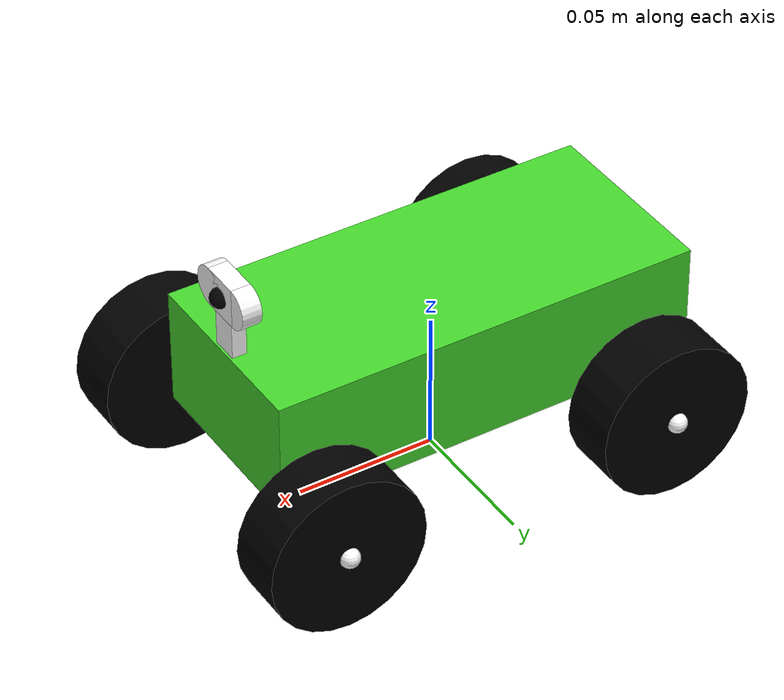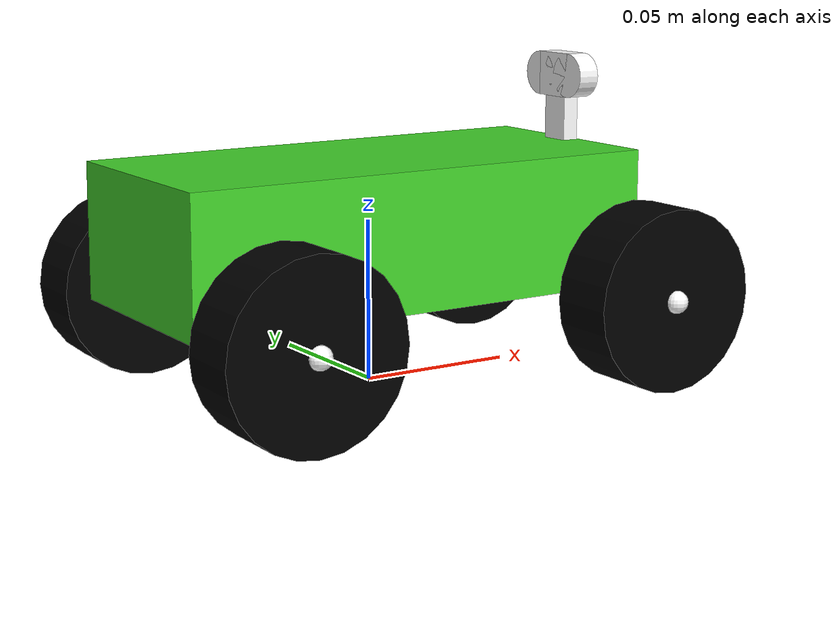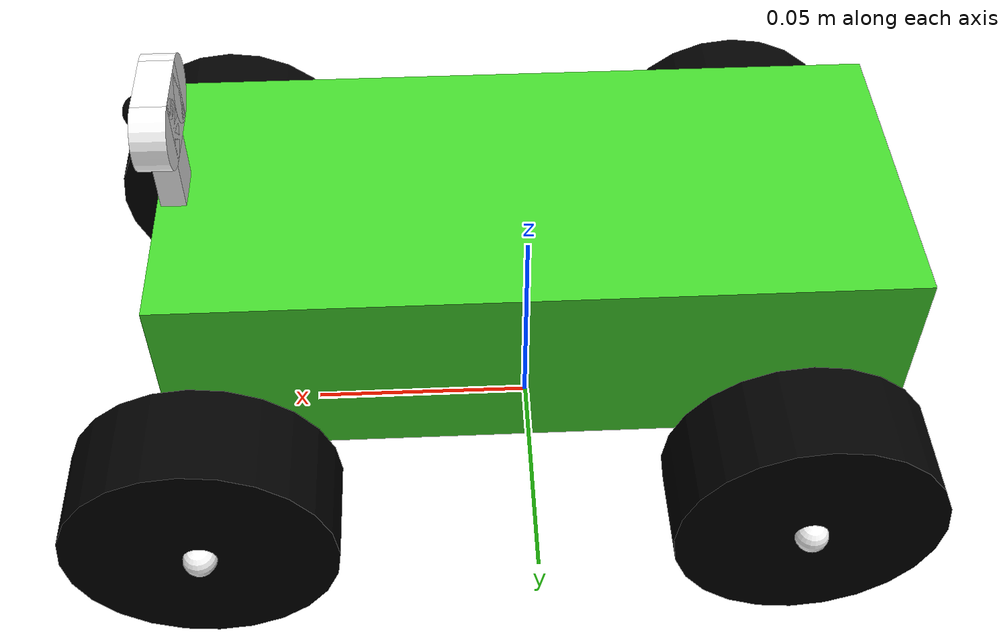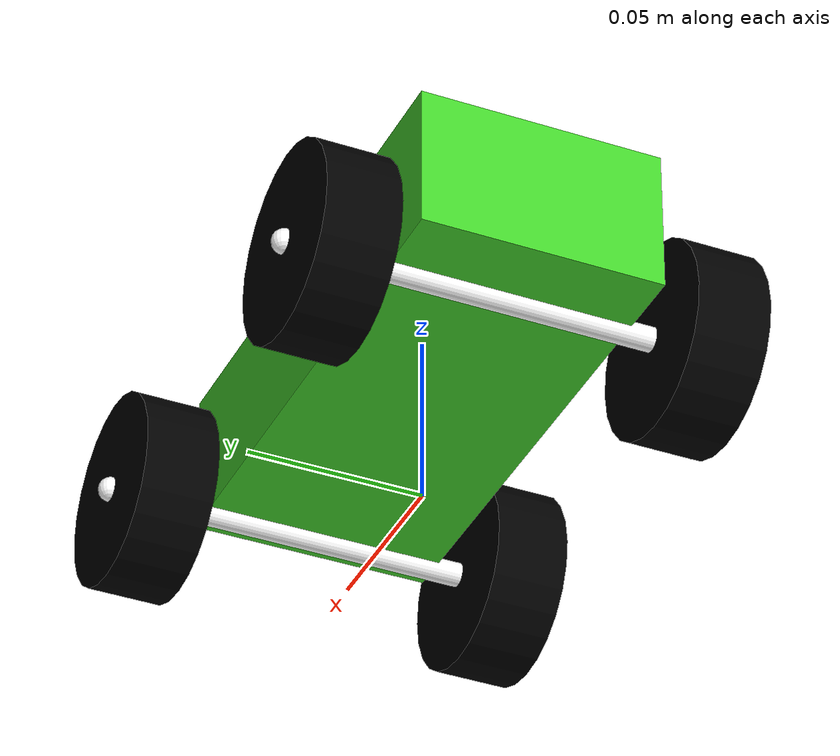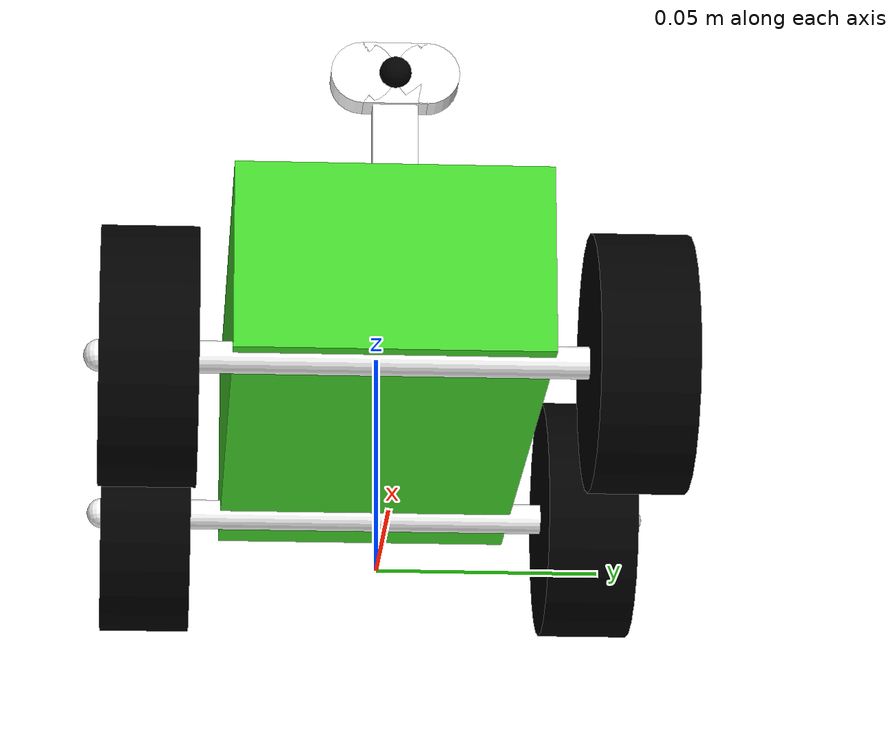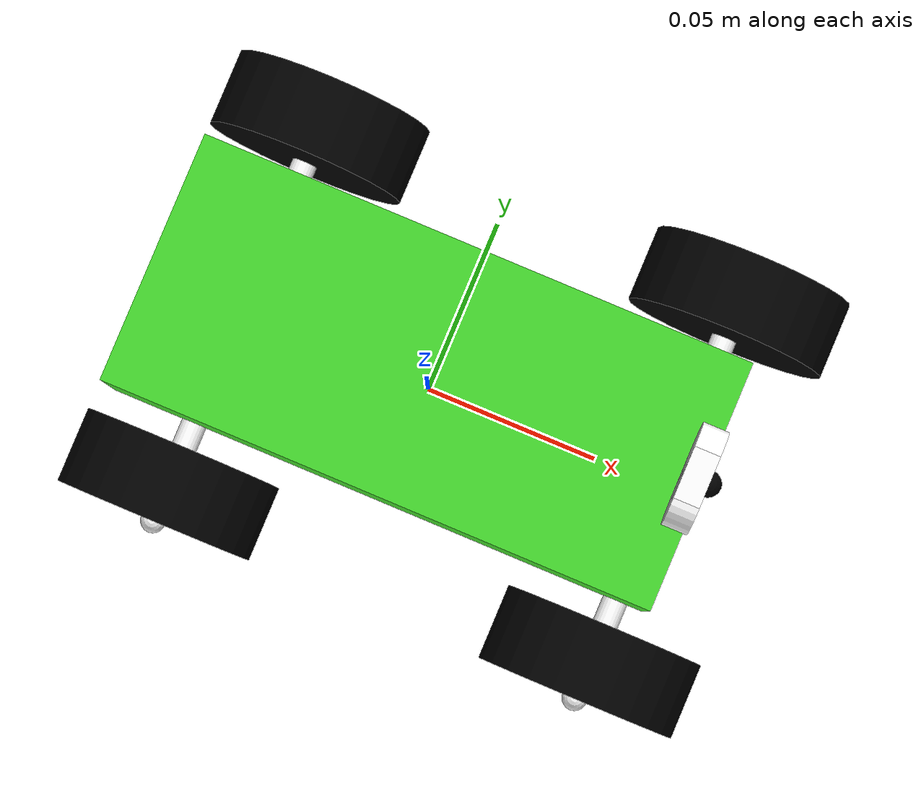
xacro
<?xml version="1.0"?>
<robot xmlns:xacro="http://www.ros.org/wiki/xacro" name="robocar">

    <link name="base_link"/>

    <xacro:include filename="params.xacro"/>
    <xacro:include filename="colors.xacro"/>
    <xacro:include filename="inertials.xacro"/>
    <xacro:include filename="parts.xacro"/>
    <xacro:include filename="car.xacro"/>
    <xacro:include filename="camera.xacro"/>
    <xacro:include filename="ros2control.xacro"/>

</robot>

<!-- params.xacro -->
<robot xmlns:xacro="http://www.ros.org/wiki/xacro">
    <!-- scale -->
    <xacro:property name="scale" value = "0.7" />

    <!-- car length -->
    <xacro:property name="cx" value = "${scale*0.22}" />

    <!-- car breath -->
    <xacro:property name="cy" value = "${scale*0.18}" />

    <!-- car height -->
    <xacro:property name="ch" value = "${scale*0.06}" />

    <!-- wheel radius -->
    <xacro:property name="wr" value = "${scale*0.04}" />

    <!-- front wheel thickness -->
    <xacro:property name="wth" value = "${scale*0.03}" />

    <!-- shaft radius -->
    <xacro:property name="sr" value = "${scale*0.005}" />

    <!-- cam lenght -->
    <xacro:property name="cam_l" value="${scale*0.01}"/>

    <!-- cam width and height -->
    <xacro:property name="cam_w" value="${scale*0.04}"/>

    <!-- camera iris radius -->
    <xacro:property name="cam_r" value="${scale*0.005}" />

</robot>

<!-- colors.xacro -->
<robot xmlns:xacro="http://www.ros.org/wiki/xacro">
    <material name="red">
        <color rgba="${68/255} ${214/255} ${44/255} 1"/>
    </material>

    <material name="blue">
        <color rgba="0 0 1 1"/>
    </material>

    <material name="green">
        <color rgba="${238/255} ${39/255} ${55/255} 1"/>
    </material>

    <material name="grey">
        <color rgba="0.6 0.6 0.6 1"/>
    </material>

    <material name="black">
        <color rgba="0 0 0 1"/>
    </material>

    <material name="white">
        <color rgba="1 1 1 1"/>
    </material>

    <material name="magenta">
        <color rgba="1 0 1 1"/>
    </material>
</robot>

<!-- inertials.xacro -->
<robot xmlns:xacro="http://www.ros.org/wiki/xacro">
    <xacro:property name="density" value = "1000" />

    <xacro:macro name="box_inertia" params="x y z *origin">
        <xacro:property name="mass" value="${density*x*y*z}" />
        <inertial>
            <xacro:insert_block name="origin"/>
            <mass value="${mass}"/>
            <inertia ixx="${(1/12)*mass*(y*y+z*z)}" ixy="0.0" ixz="0.0" iyy="${(1/12)*mass*(x*x+z*z)}" iyz="0.0" izz="${(1/12)*mass*(x*x+y*y)}"/>
        </inertial>
    </xacro:macro>

    <xacro:macro name="cylinder_inertia" params="r h *origin">
        <xacro:property name="mass" value="${density*pi*r*r*h}" />
        <inertial>
            <xacro:insert_block name="origin"/>
            <mass value="${mass}"/>
            <inertia ixx="${(1/12)*mass*(3*r*r + h*h)}" ixy="0.0" ixz="0.0" iyy="${(1/12)*mass*(3*r*r+h*h)}" iyz="0.0" izz="${(1/12)*mass*(r*r)}"/>
        </inertial>
    </xacro:macro>

    <xacro:macro name="sphere_inertia" params="r *origin">
        <xacro:property name="mass" value="${(4/3)*density*pi*r*r*r}" />
        <inertial>
            <xacro:insert_block name="origin"/>
            <mass value="${mass}"/>
            <inertia ixx="${(2/5)*mass*r*r}" ixy="0.0" ixz="0.0" iyy="${(2/5)*mass*r*r}" iyz="0.0" izz="${(2/5)*mass*r*r}"/>
        </inertial>
    </xacro:macro>
</robot>

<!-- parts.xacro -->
<robot xmlns:xacro="http://www.ros.org/wiki/xacro">

    <xacro:macro name="shaft_link" params="link_name">
        <link name="${link_name}">
            <visual>
                <origin xyz="0.0 0.0 0.0" rpy="${pi/2} 0.0 0.0"/>
                <geometry>
                    <cylinder radius="${sr}" length="${cy}"/>
                </geometry>
                <material name="white"/>
            </visual>
            <visual>
                <origin xyz="0.0 ${cy/2} 0.0" rpy="0 0.0 0.0"/>
                <geometry>
                    <sphere radius="${sr}"/>
                </geometry>
                <material name="white" />
            </visual>
            <visual>
                <origin xyz="0.0 ${-cy/2} 0.0" rpy="0 0.0 0.0"/>
                <geometry>
                    <sphere radius="${sr}"/>
                </geometry>
                <material name="white" />
            </visual>

            <collision>
                <origin xyz="0.0 0.0 0.0" rpy="${pi/2} 0.0 0.0"/>
                <geometry>
                    <cylinder radius="${sr}" length="${cy}"/>
                </geometry>
            </collision>

            <xacro:cylinder_inertia r="${sr}" h="${cy}">
                <origin xyz="0.0 0.0 0.0" rpy="${pi/2} 0.0 0.0"/>
            </xacro:cylinder_inertia>

        </link>
    </xacro:macro>

    <xacro:macro name="wheel" params="link_name wr wth">
        <link name="${link_name}">
            <visual>
                <origin xyz="0.0 0.0 0.0" rpy="${pi/2} 0.0 0.0"/>
                <geometry>
                    <cylinder radius="${wr}" length="${wth}"/>
                </geometry>
                <material name="black" />
            </visual>
            <collision>
                <origin xyz="0.0 0.0 0.0" rpy="${pi/2} 0.0 0.0"/>
                <geometry>
                    <cylinder radius="${wr}" length="${wth}"/>
                </geometry>
            </collision>
            <xacro:cylinder_inertia r="${wr}" h="${wth}">
                <origin xyz="0.0 0.0 0.0" rpy="${pi/2} 0.0 0.0"/>
            </xacro:cylinder_inertia>
        </link>
    </xacro:macro>
</robot>

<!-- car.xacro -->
<robot xmlns:xacro="http://www.ros.org/wiki/xacro">

    <!-- chassis -->
    <link name="chassis">
        <xacro:property name="ratio" value="0.55"/>
        <visual>
            <geometry>
                <box size="${cx} ${cy*ratio} ${ch}"/>
            </geometry>
            <origin xyz="0.0 0.0 0.0" rpy="0.0 0.0 0.0"/>
            <material name="red" />
        </visual>
        <collision>
            <geometry>
                <box size="${cx} ${cy*ratio} ${ch}"/>
            </geometry>
            <origin xyz="0.0 0.0 0.0" rpy="0.0 0.0 0.0"/>
        </collision>
        <xacro:box_inertia x="${cx}" y="${cy*ratio}" z="${ch}" >
            <origin xyz="0.0 0.0 0.0" rpy="0.0 0.0 0.0"/>
        </xacro:box_inertia>
    </link>
    <gazebo reference="chassis">
        <material>Gazebo/Red</material>
    </gazebo>
    <joint name="base_joint" type="fixed">
        <parent link="base_link"/>
        <child link="chassis"/>
        <origin xyz="0.0 0.0 ${ch/2+wr}" rpy="0.0 0.0 0.0"/>
    </joint>

    <!-- rear shaft -->
    <joint name="chassis_rear_shaft_joint" type="fixed">
        <parent link="chassis"/>
        <child link="rear_shaft"/>
        <origin xyz="${-cx*0.35} 0 ${-ch/2}" rpy="0 0.0 0.0"/>
    </joint>
    <xacro:shaft_link link_name="rear_shaft"/>
    <gazebo reference="rear_shaft">
        <material>Gazebo/White</material>
    </gazebo>

    <!-- front shaft -->
    <joint name="chassis_front_shaft_joint" type="fixed">
        <parent link="chassis"/>
        <child link="front_shaft"/>
        <origin xyz="${cx*0.45} 0 ${-ch/2}" rpy="0 0.0 0.0"/>
    </joint>
    <xacro:shaft_link link_name="front_shaft"/>
    <gazebo reference="front_shaft">
        <material>Gazebo/White</material>
    </gazebo>

    <!-- front right wheel -->
    <xacro:wheel link_name="front_right_wheel" wr="${wr}" wth="${wth}"/>
    <gazebo reference="front_right_wheel">
        <material>Gazebo/Black</material>
    </gazebo>
    <xacro:wheel link_name="front_right_wheel_asm" wr="${wr/2}" wth="${wth/5}"/>
    <gazebo reference="front_right_wheel_asm">
        <material>Gazebo/Black</material>
    </gazebo>
    <joint name="right_steer_joint" type="revolute">
        <parent link="front_shaft"/>
        <child link="front_right_wheel_asm"/>
        <origin xyz="0.0 ${cy/2-wth/2} 0.0" rpy="0.0 0.0 0.0"/>
        <limit lower="${-pi/6}" upper="${pi/6}" effort="1000" velocity="1000"/>
        <axis xyz="0.0 0.0 1"/>
    </joint>
    <joint name="front_right_wheel_rotate" type="continuous">
        <parent link="front_right_wheel_asm"/>
        <child link="front_right_wheel"/>
        <origin xyz="0.0 0.0 0.0" rpy="0.0 0.0 0.0"/>
        <axis xyz="0.0 1 0.0"/>
        <limit effort="100" velocity="50"/>
    </joint>

    <!-- front left wheel -->
    <xacro:wheel link_name="front_left_wheel" wr="${wr}" wth="${wth}"/>
    <gazebo reference="front_left_wheel">
        <material>Gazebo/Black</material>
    </gazebo>
    <xacro:wheel link_name="front_left_wheel_asm" wr="${wr/2}" wth="${wth/5}"/>
    <gazebo reference="front_left_wheel_asm">
        <material>Gazebo/Black</material>
    </gazebo>
    <joint name="left_steer_joint" type="revolute">
        <parent link="front_shaft"/>
        <child link="front_left_wheel_asm"/>
        <origin xyz="0.0 ${-cy/2 +wth/2} 0.0" rpy="0.0 0.0 0.0"/>
        <limit lower="${-pi/6}" upper="${pi/6}" effort="1000" velocity="1000"/>
        <axis xyz="0.0 0.0 1"/>
    </joint>
    <joint name="front_left_wheel_rotate" type="continuous">
        <parent link="front_left_wheel_asm"/>
        <child link="front_left_wheel"/>
        <origin xyz="0.0 0.0 0.0" rpy="0.0 0.0 0.0"/>
        <axis xyz="0.0 1 0.0"/>
        <limit effort="100" velocity="50"/>
    </joint>

    <!-- rear right wheel -->
    <xacro:wheel link_name="rear_right_wheel" wr="${wr}" wth="${wth}" />
    <gazebo reference="rear_right_wheel">
        <material>Gazebo/Black</material>
    </gazebo>
    <joint name="rear_right_wheel_rotate" type="continuous">
        <parent link="rear_shaft"/>
        <child link="rear_right_wheel"/>
        <origin xyz="0.0 ${-cy/2 + wth/2} 0.0" rpy="0.0 0.0 0.0"/>
        <axis xyz="0 1 0.0"/>
        <limit effort="1000" velocity="100"/>
    </joint>

    <!-- rear left wheel -->
    <xacro:wheel link_name="rear_left_wheel" wr="${wr}" wth="${wth}" />
    <gazebo reference="rear_left_wheel">
        <material>Gazebo/Black</material>
    </gazebo>
    <joint name="rear_left_wheel_rotate" type="continuous">
        <parent link="rear_shaft"/>
        <child link="rear_left_wheel"/>
        <origin xyz="0.0 ${cy/2 - wth/2} 0.0" rpy="0.0 0.0 0.0"/>
        <axis xyz="0 1 0.0"/>
        <limit effort="1000" velocity="100"/>
    </joint>

</robot>

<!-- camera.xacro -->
<robot xmlns:xacro="http://www.ros.org/wiki/xacro">

    <joint name="chassis_camera_joint" type="fixed">
        <parent link="chassis"/>
        <child link="camera_link"/>
        <origin xyz="${cx/2-cam_l/2} 0 ${ch/2}" rpy="0.0 0.0 0.0"/>
    </joint>

    <link name="camera_link">
        <visual>
            <origin xyz="0.0 0.0 ${cam_w/4}" rpy="0.0 0.0 0.0"/>
            <geometry>
                <box size="${cam_l*0.75} ${cam_w*0.35} ${cam_w/2}"/>
            </geometry>
            <material name="white" />
        </visual>
        <visual>
            <origin xyz="0.0 0.0 ${cam_w*0.75}" rpy="0.0 0.0 0.0"/>
            <geometry>
                <box size="${cam_l} ${cam_w/2} ${cam_w/2}"/>
            </geometry>
            <material name="white" />
        </visual>
        <visual>
            <origin xyz="0.0 ${-cam_w/4} ${cam_w*0.75}" rpy="0.0 ${pi/2} 0.0"/>
            <geometry>
                <cylinder radius="${cam_w/4}" length="${cam_l}"/>
            </geometry>
            <material name="white" />
        </visual>
        <visual>
            <origin xyz="0.0 ${cam_w/4} ${cam_w*0.75}" rpy="0.0 ${pi/2} 0.0"/>
            <geometry>
                <cylinder radius="${cam_w/4}" length="${cam_l}"/>
            </geometry>
            <material name="white" />
        </visual>
        <collision>
            <origin xyz="0.0 0.0 ${cam_w/2}" rpy="0.0 0.0 0.0"/>
            <geometry>
                <box size="${cam_l} ${cam_w} ${cam_w}"/>
            </geometry>
        </collision>
        <xacro:box_inertia x="${cam_l}" y="${cam_w}" z="${cam_w}">
            <origin xyz="0.0 0.0 ${cam_w/2}" rpy="0.0 0.0 0.0"/>
        </xacro:box_inertia>
    </link>

    <link name="iris_link">
        <visual>
            <geometry>
                <sphere radius="${cam_r}"/>
            </geometry>
            <material name="black" />
        </visual>
        <xacro:sphere_inertia r="${cam_r}">
            <origin xyz="0.0 0.0 0.0" rpy="0.0 0.0 0.0"/>
        </xacro:sphere_inertia>
    </link>
    <joint name="iris_joint" type="fixed">
        <parent link="camera_link"/>
        <child link="iris_link"/>
        <origin xyz="${cam_l/2} 0 ${cam_w*0.75}" rpy="0.0 0.0 0.0"/>
    </joint>
    <gazebo reference="iris_link">
        <material>Gazebo/Black</material>
    </gazebo>

</robot>
